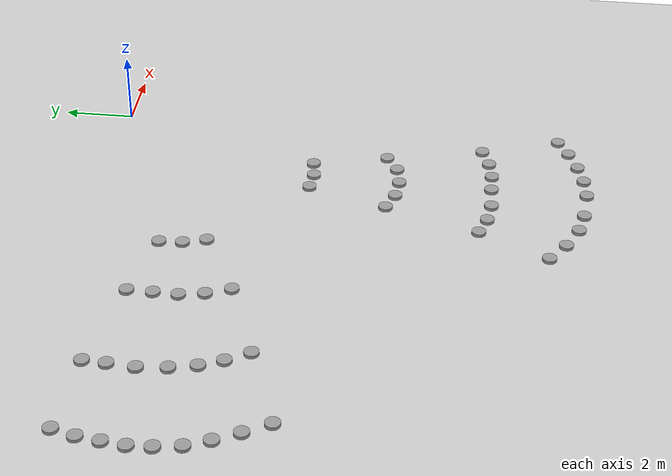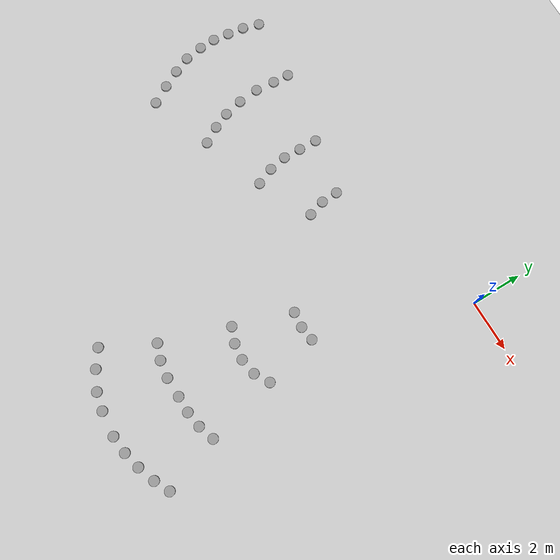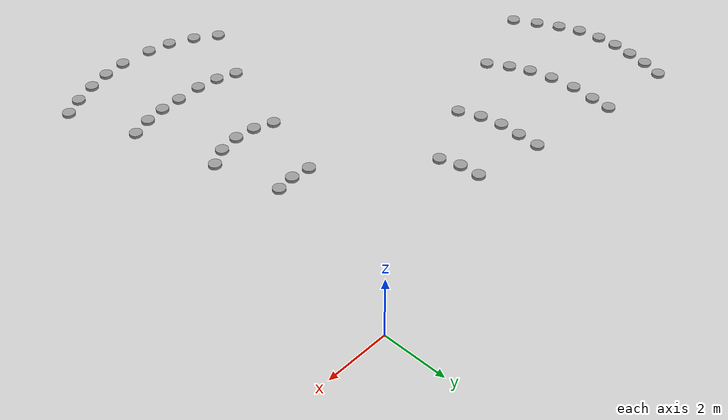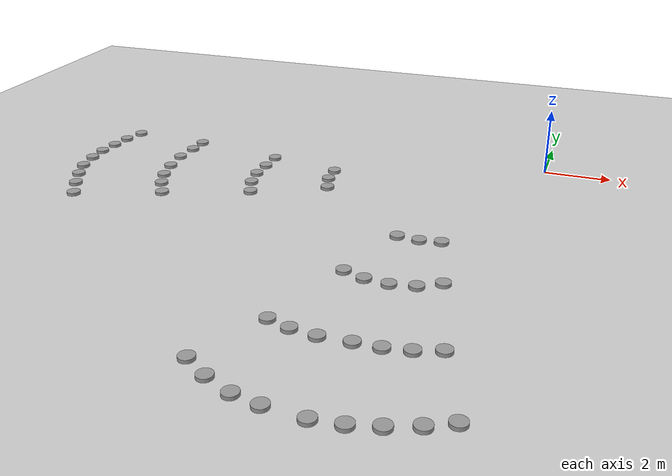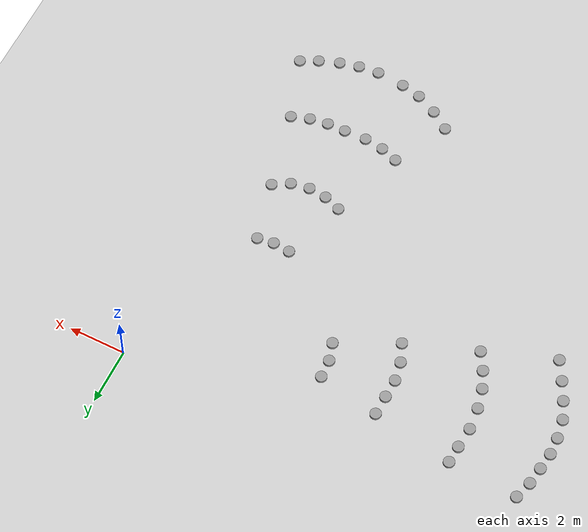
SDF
<sdf version="1.6">
 <world name="default">
  <model name="ground_plane">
   <static>1</static>
   <link name="link">
    <collision name="collision">
     <geometry><plane><normal>0 0 1</normal><size>100 100</size></plane></geometry>
     <surface><friction><ode><mu>100</mu><mu2>50</mu2></ode></friction></surface>
    </collision>
    <visual name="visual">
     <cast_shadows>0</cast_shadows>
     <geometry><plane><normal>0 0 1</normal><size>100 100</size></plane></geometry>
     <material>
      <script><uri>file://media/materials/scripts/gazebo.material</uri><name>Gazebo/Grey</name></script>
     </material>
    </visual>
   </link>
  </model>
  <model name="unit_cylinder_1_clone_clone_13_clone_56_clone_34_clone_46">
   <pose>-1.98058 -5.88205 0.048247 0 -0 0.015201</pose>
   <link name="link">
    <inertial>
     <mass>1</mass>
     <inertia><ixx>0.145833</ixx><ixy>0</ixy><ixz>0</ixz><iyy>0.145833</iyy><iyz>0</iyz><izz>0.125</izz></inertia>
    </inertial>
    <collision name="collision">
     <geometry><cylinder><radius>0.20005</radius><length>0.0965019</length></cylinder></geometry>
    </collision>
    <visual name="visual">
     <geometry><cylinder><radius>0.20005</radius><length>0.0965019</length></cylinder></geometry>
     <material>
      <script><name>Gazebo/Grey</name><uri>file://media/materials/scripts/gazebo.material</uri></script>
     </material>
    </visual>
   </link>
  </model>
  <model name="unit_cylinder_1_clone_clone_13_clone_56_clone_34_clone_47">
   <pose>-2.5721 -5.96351 0.048247 0 -0 0.015201</pose>
   <link name="link">
    <inertial>
     <mass>1</mass>
     <inertia><ixx>0.145833</ixx><ixy>0</ixy><ixz>0</ixz><iyy>0.145833</iyy><iyz>0</iyz><izz>0.125</izz></inertia>
    </inertial>
    <collision name="collision">
     <geometry><cylinder><radius>0.20005</radius><length>0.0965019</length></cylinder></geometry>
    </collision>
    <visual name="visual">
     <geometry><cylinder><radius>0.20005</radius><length>0.0965019</length></cylinder></geometry>
     <material>
      <script><name>Gazebo/Grey</name><uri>file://media/materials/scripts/gazebo.material</uri></script>
     </material>
    </visual>
   </link>
  </model>
  <model name="unit_cylinder_1_clone_clone_13_clone_56_clone_34_clone_48">
   <pose>-3.18819 -5.90583 0.048244 0 -0 0.015201</pose>
   <link name="link">
    <inertial>
     <mass>1</mass>
     <inertia><ixx>0.145833</ixx><ixy>0</ixy><ixz>0</ixz><iyy>0.145833</iyy><iyz>0</iyz><izz>0.125</izz></inertia>
    </inertial>
    <collision name="collision">
     <geometry><cylinder><radius>0.20005</radius><length>0.0965019</length></cylinder></geometry>
    </collision>
    <visual name="visual">
     <geometry><cylinder><radius>0.20005</radius><length>0.0965019</length></cylinder></geometry>
     <material>
      <script><name>Gazebo/Grey</name><uri>file://media/materials/scripts/gazebo.material</uri></script>
     </material>
    </visual>
   </link>
  </model>
  <model name="unit_cylinder_1_clone_clone_13_clone_56_clone_34_clone_49">
   <pose>-1.44226 -8 0.048247 0 -0 0.015201</pose>
   <link name="link">
    <inertial>
     <mass>1</mass>
     <inertia><ixx>0.145833</ixx><ixy>0</ixy><ixz>0</ixz><iyy>0.145833</iyy><iyz>0</iyz><izz>0.125</izz></inertia>
    </inertial>
    <collision name="collision">
     <geometry><cylinder><radius>0.20005</radius><length>0.0965019</length></cylinder></geometry>
    </collision>
    <visual name="visual">
     <geometry><cylinder><radius>0.20005</radius><length>0.0965019</length></cylinder></geometry>
     <material>
      <script><name>Gazebo/Grey</name><uri>file://media/materials/scripts/gazebo.material</uri></script>
     </material>
    </visual>
   </link>
  </model>
  <model name="unit_cylinder_1_clone_clone_13_clone_56_clone_34_clone_50">
   <pose>-2.01841 -8.33661 0.048244 0 -0 0.015201</pose>
   <link name="link">
    <inertial>
     <mass>1</mass>
     <inertia><ixx>0.145833</ixx><ixy>0</ixy><ixz>0</ixz><iyy>0.145833</iyy><iyz>0</iyz><izz>0.125</izz></inertia>
    </inertial>
    <collision name="collision">
     <geometry><cylinder><radius>0.20005</radius><length>0.0965019</length></cylinder></geometry>
    </collision>
    <visual name="visual">
     <geometry><cylinder><radius>0.20005</radius><length>0.0965019</length></cylinder></geometry>
     <material>
      <script><name>Gazebo/Grey</name><uri>file://media/materials/scripts/gazebo.material</uri></script>
     </material>
    </visual>
   </link>
  </model>
  <model name="unit_cylinder_1_clone_clone_13_clone_56_clone_34_clone_51">
   <pose>-2.68234 -8.45 0.048244 -2e-06 2e-06 0.015201</pose>
   <link name="link">
    <inertial>
     <mass>1</mass>
     <inertia><ixx>0.145833</ixx><ixy>0</ixy><ixz>0</ixz><iyy>0.145833</iyy><iyz>0</iyz><izz>0.125</izz></inertia>
    </inertial>
    <collision name="collision">
     <geometry><cylinder><radius>0.20005</radius><length>0.0965019</length></cylinder></geometry>
    </collision>
    <visual name="visual">
     <geometry><cylinder><radius>0.20005</radius><length>0.0965019</length></cylinder></geometry>
     <material>
      <script><name>Gazebo/Grey</name><uri>file://media/materials/scripts/gazebo.material</uri></script>
     </material>
    </visual>
   </link>
  </model>
  <model name="unit_cylinder_1_clone_clone_13_clone_56_clone_34_clone_52">
   <pose>-3.3365 -8.38358 0.048247 0 -0 0.015201</pose>
   <link name="link">
    <inertial>
     <mass>1</mass>
     <inertia><ixx>0.145833</ixx><ixy>0</ixy><ixz>0</ixz><iyy>0.145833</iyy><iyz>0</iyz><izz>0.125</izz></inertia>
    </inertial>
    <collision name="collision">
     <geometry><cylinder><radius>0.20005</radius><length>0.0965019</length></cylinder></geometry>
    </collision>
    <visual name="visual">
     <geometry><cylinder><radius>0.20005</radius><length>0.0965019</length></cylinder></geometry>
     <material>
      <script><name>Gazebo/Grey</name><uri>file://media/materials/scripts/gazebo.material</uri></script>
     </material>
    </visual>
   </link>
  </model>
  <model name="unit_cylinder_1_clone_clone_13_clone_56_clone_34_clone_53">
   <pose>-3.93745 -8.15759 0.048244 0 -0 0.015201</pose>
   <link name="link">
    <inertial>
     <mass>1</mass>
     <inertia><ixx>0.145833</ixx><ixy>0</ixy><ixz>0</ixz><iyy>0.145833</iyy><iyz>0</iyz><izz>0.125</izz></inertia>
    </inertial>
    <collision name="collision">
     <geometry><cylinder><radius>0.20005</radius><length>0.0965019</length></cylinder></geometry>
    </collision>
    <visual name="visual">
     <geometry><cylinder><radius>0.20005</radius><length>0.0965019</length></cylinder></geometry>
     <material>
      <script><name>Gazebo/Grey</name><uri>file://media/materials/scripts/gazebo.material</uri></script>
     </material>
    </visual>
   </link>
  </model>
  <model name="unit_cylinder_1_clone_clone_13_clone_56_clone_34_clone_57">
   <pose>-0.777241 -10.7728 0.048247 0 -0 0.015201</pose>
   <link name="link">
    <inertial>
     <mass>1</mass>
     <inertia><ixx>0.145833</ixx><ixy>0</ixy><ixz>0</ixz><iyy>0.145833</iyy><iyz>0</iyz><izz>0.125</izz></inertia>
    </inertial>
    <collision name="collision">
     <geometry><cylinder><radius>0.20005</radius><length>0.0965019</length></cylinder></geometry>
    </collision>
    <visual name="visual">
     <geometry><cylinder><radius>0.20005</radius><length>0.0965019</length></cylinder></geometry>
     <material>
      <script><name>Gazebo/Grey</name><uri>file://media/materials/scripts/gazebo.material</uri></script>
     </material>
    </visual>
   </link>
  </model>
  <model name="unit_cylinder_1_clone_clone_13_clone_56_clone_34_clone_58">
   <pose>-1.41768 -10.9895 0.048244 0 -0 0.015201</pose>
   <link name="link">
    <inertial>
     <mass>1</mass>
     <inertia><ixx>0.145833</ixx><ixy>0</ixy><ixz>0</ixz><iyy>0.145833</iyy><iyz>0</iyz><izz>0.125</izz></inertia>
    </inertial>
    <collision name="collision">
     <geometry><cylinder><radius>0.20005</radius><length>0.0965019</length></cylinder></geometry>
    </collision>
    <visual name="visual">
     <geometry><cylinder><radius>0.20005</radius><length>0.0965019</length></cylinder></geometry>
     <material>
      <script><name>Gazebo/Grey</name><uri>file://media/materials/scripts/gazebo.material</uri></script>
     </material>
    </visual>
   </link>
  </model>
  <model name="unit_cylinder_1_clone_clone_13_clone_56_clone_34_clone_59">
   <pose>-2.06887 -11.0898 0.048247 0 -0 0.015201</pose>
   <link name="link">
    <inertial>
     <mass>1</mass>
     <inertia><ixx>0.145833</ixx><ixy>0</ixy><ixz>0</ixz><iyy>0.145833</iyy><iyz>0</iyz><izz>0.125</izz></inertia>
    </inertial>
    <collision name="collision">
     <geometry><cylinder><radius>0.20005</radius><length>0.0965019</length></cylinder></geometry>
    </collision>
    <visual name="visual">
     <geometry><cylinder><radius>0.20005</radius><length>0.0965019</length></cylinder></geometry>
     <material>
      <script><name>Gazebo/Grey</name><uri>file://media/materials/scripts/gazebo.material</uri></script>
     </material>
    </visual>
   </link>
  </model>
  <model name="unit_cylinder_1_clone_clone_13_clone_56_clone_34_clone_60">
   <pose>-2.73016 -11.0968 0.048244 0 -0 0.015201</pose>
   <link name="link">
    <inertial>
     <mass>1</mass>
     <inertia><ixx>0.145833</ixx><ixy>0</ixy><ixz>0</ixz><iyy>0.145833</iyy><iyz>0</iyz><izz>0.125</izz></inertia>
    </inertial>
    <collision name="collision">
     <geometry><cylinder><radius>0.20005</radius><length>0.0965019</length></cylinder></geometry>
    </collision>
    <visual name="visual">
     <geometry><cylinder><radius>0.20005</radius><length>0.0965019</length></cylinder></geometry>
     <material>
      <script><name>Gazebo/Grey</name><uri>file://media/materials/scripts/gazebo.material</uri></script>
     </material>
    </visual>
   </link>
  </model>
  <model name="unit_cylinder_1_clone_clone_13_clone_56_clone_34_clone_56">
   <pose>-3.53004 -11.1178 0.048244 0 -0 0.015201</pose>
   <link name="link">
    <inertial>
     <mass>1</mass>
     <inertia><ixx>0.145833</ixx><ixy>0</ixy><ixz>0</ixz><iyy>0.145833</iyy><iyz>0</iyz><izz>0.125</izz></inertia>
    </inertial>
    <collision name="collision">
     <geometry><cylinder><radius>0.20005</radius><length>0.0965019</length></cylinder></geometry>
    </collision>
    <visual name="visual">
     <geometry><cylinder><radius>0.20005</radius><length>0.0965019</length></cylinder></geometry>
     <material>
      <script><name>Gazebo/Grey</name><uri>file://media/materials/scripts/gazebo.material</uri></script>
     </material>
    </visual>
   </link>
  </model>
  <model name="unit_cylinder_1_clone_clone_13_clone_56_clone_34_clone_55">
   <pose>-4.21998 -11.0232 0.048247 0 -0 0.015201</pose>
   <link name="link">
    <inertial>
     <mass>1</mass>
     <inertia><ixx>0.145833</ixx><ixy>0</ixy><ixz>0</ixz><iyy>0.145833</iyy><iyz>0</iyz><izz>0.125</izz></inertia>
    </inertial>
    <collision name="collision">
     <geometry><cylinder><radius>0.20005</radius><length>0.0965019</length></cylinder></geometry>
    </collision>
    <visual name="visual">
     <geometry><cylinder><radius>0.20005</radius><length>0.0965019</length></cylinder></geometry>
     <material>
      <script><name>Gazebo/Grey</name><uri>file://media/materials/scripts/gazebo.material</uri></script>
     </material>
    </visual>
   </link>
  </model>
  <model name="unit_cylinder_1_clone_clone_13_clone_56_clone_34_clone_54">
   <pose>-4.83362 -10.8094 0.048244 0 -0 0.015201</pose>
   <link name="link">
    <inertial>
     <mass>1</mass>
     <inertia><ixx>0.145833</ixx><ixy>0</ixy><ixz>0</ixz><iyy>0.145833</iyy><iyz>0</iyz><izz>0.125</izz></inertia>
    </inertial>
    <collision name="collision">
     <geometry><cylinder><radius>0.20005</radius><length>0.0965019</length></cylinder></geometry>
    </collision>
    <visual name="visual">
     <geometry><cylinder><radius>0.20005</radius><length>0.0965019</length></cylinder></geometry>
     <material>
      <script><name>Gazebo/Grey</name><uri>file://media/materials/scripts/gazebo.material</uri></script>
     </material>
    </visual>
   </link>
  </model>
  <model name="unit_cylinder_1_clone_clone_13_clone_56_clone_34_clone_61">
   <pose>-1e-06 -13 0.048247 0 -0 0.015201</pose>
   <link name="link">
    <inertial>
     <mass>1</mass>
     <inertia><ixx>0.145833</ixx><ixy>0</ixy><ixz>0</ixz><iyy>0.145833</iyy><iyz>0</iyz><izz>0.125</izz></inertia>
    </inertial>
    <collision name="collision">
     <geometry><cylinder><radius>0.20005</radius><length>0.0965019</length></cylinder></geometry>
    </collision>
    <visual name="visual">
     <geometry><cylinder><radius>0.20005</radius><length>0.0965019</length></cylinder></geometry>
     <material>
      <script><name>Gazebo/Grey</name><uri>file://media/materials/scripts/gazebo.material</uri></script>
     </material>
    </visual>
   </link>
  </model>
  <model name="unit_cylinder_1_clone_clone_13_clone_56_clone_34_clone_62">
   <pose>-0.600849 -13.3026 0.048244 0 -0 0.015201</pose>
   <link name="link">
    <inertial>
     <mass>1</mass>
     <inertia><ixx>0.145833</ixx><ixy>0</ixy><ixz>0</ixz><iyy>0.145833</iyy><iyz>0</iyz><izz>0.125</izz></inertia>
    </inertial>
    <collision name="collision">
     <geometry><cylinder><radius>0.20005</radius><length>0.0965019</length></cylinder></geometry>
    </collision>
    <visual name="visual">
     <geometry><cylinder><radius>0.20005</radius><length>0.0965019</length></cylinder></geometry>
     <material>
      <script><name>Gazebo/Grey</name><uri>file://media/materials/scripts/gazebo.material</uri></script>
     </material>
    </visual>
   </link>
  </model>
  <model name="unit_cylinder_1_clone_clone_13_clone_56_clone_34_clone_63">
   <pose>-1.30563 -13.5584 0.048247 0 -0 0.015201</pose>
   <link name="link">
    <inertial>
     <mass>1</mass>
     <inertia><ixx>0.145833</ixx><ixy>0</ixy><ixz>0</ixz><iyy>0.145833</iyy><iyz>0</iyz><izz>0.125</izz></inertia>
    </inertial>
    <collision name="collision">
     <geometry><cylinder><radius>0.20005</radius><length>0.0965019</length></cylinder></geometry>
    </collision>
    <visual name="visual">
     <geometry><cylinder><radius>0.20005</radius><length>0.0965019</length></cylinder></geometry>
     <material>
      <script><name>Gazebo/Grey</name><uri>file://media/materials/scripts/gazebo.material</uri></script>
     </material>
    </visual>
   </link>
  </model>
  <model name="unit_cylinder_1_clone_clone_13_clone_56_clone_34_clone_64">
   <pose>-1.99428 -13.728 0.048244 0 -0 0.015201</pose>
   <link name="link">
    <inertial>
     <mass>1</mass>
     <inertia><ixx>0.145833</ixx><ixy>0</ixy><ixz>0</ixz><iyy>0.145833</iyy><iyz>0</iyz><izz>0.125</izz></inertia>
    </inertial>
    <collision name="collision">
     <geometry><cylinder><radius>0.20005</radius><length>0.0965019</length></cylinder></geometry>
    </collision>
    <visual name="visual">
     <geometry><cylinder><radius>0.20005</radius><length>0.0965019</length></cylinder></geometry>
     <material>
      <script><name>Gazebo/Grey</name><uri>file://media/materials/scripts/gazebo.material</uri></script>
     </material>
    </visual>
   </link>
  </model>
  <model name="unit_cylinder_1_clone_clone_13_clone_56_clone_34_clone_65">
   <pose>-2.71571 -13.8 0.048244 0 -0 0.015201</pose>
   <link name="link">
    <inertial>
     <mass>1</mass>
     <inertia><ixx>0.145833</ixx><ixy>0</ixy><ixz>0</ixz><iyy>0.145833</iyy><iyz>0</iyz><izz>0.125</izz></inertia>
    </inertial>
    <collision name="collision">
     <geometry><cylinder><radius>0.20005</radius><length>0.0965019</length></cylinder></geometry>
    </collision>
    <visual name="visual">
     <geometry><cylinder><radius>0.20005</radius><length>0.0965019</length></cylinder></geometry>
     <material>
      <script><name>Gazebo/Grey</name><uri>file://media/materials/scripts/gazebo.material</uri></script>
     </material>
    </visual>
   </link>
  </model>
  <model name="unit_cylinder_1_clone_clone_13_clone_56_clone_34_clone_66">
   <pose>-3.71695 -13.7132 0.048244 0 -0 0.015201</pose>
   <link name="link">
    <inertial>
     <mass>1</mass>
     <inertia><ixx>0.145833</ixx><ixy>0</ixy><ixz>0</ixz><iyy>0.145833</iyy><iyz>0</iyz><izz>0.125</izz></inertia>
    </inertial>
    <collision name="collision">
     <geometry><cylinder><radius>0.20005</radius><length>0.0965019</length></cylinder></geometry>
    </collision>
    <visual name="visual">
     <geometry><cylinder><radius>0.20005</radius><length>0.0965019</length></cylinder></geometry>
     <material>
      <script><name>Gazebo/Grey</name><uri>file://media/materials/scripts/gazebo.material</uri></script>
     </material>
    </visual>
   </link>
  </model>
  <model name="unit_cylinder_1_clone_clone_13_clone_56_clone_34_clone_67">
   <pose>-4.4277 -13.5571 0.048247 0 -0 0.015201</pose>
   <link name="link">
    <inertial>
     <mass>1</mass>
     <inertia><ixx>0.145833</ixx><ixy>0</ixy><ixz>0</ixz><iyy>0.145833</iyy><iyz>0</iyz><izz>0.125</izz></inertia>
    </inertial>
    <collision name="collision">
     <geometry><cylinder><radius>0.20005</radius><length>0.0965019</length></cylinder></geometry>
    </collision>
    <visual name="visual">
     <geometry><cylinder><radius>0.20005</radius><length>0.0965019</length></cylinder></geometry>
     <material>
      <script><name>Gazebo/Grey</name><uri>file://media/materials/scripts/gazebo.material</uri></script>
     </material>
    </visual>
   </link>
  </model>
  <model name="unit_cylinder_1_clone_clone_13_clone_56_clone_34_clone_68">
   <pose>-5.17165 -13.2023 0.048244 0 -0 0.015201</pose>
   <link name="link">
    <inertial>
     <mass>1</mass>
     <inertia><ixx>0.145833</ixx><ixy>0</ixy><ixz>0</ixz><iyy>0.145833</iyy><iyz>0</iyz><izz>0.125</izz></inertia>
    </inertial>
    <collision name="collision">
     <geometry><cylinder><radius>0.20005</radius><length>0.0965019</length></cylinder></geometry>
    </collision>
    <visual name="visual">
     <geometry><cylinder><radius>0.20005</radius><length>0.0965019</length></cylinder></geometry>
     <material>
      <script><name>Gazebo/Grey</name><uri>file://media/materials/scripts/gazebo.material</uri></script>
     </material>
    </visual>
   </link>
  </model>
  <model name="unit_cylinder_1_clone_clone_13_clone_56_clone_34_clone_69">
   <pose>-5.82735 -12.747 0.048247 0 -0 0.015201</pose>
   <link name="link">
    <inertial>
     <mass>1</mass>
     <inertia><ixx>0.145833</ixx><ixy>0</ixy><ixz>0</ixz><iyy>0.145833</iyy><iyz>0</iyz><izz>0.125</izz></inertia>
    </inertial>
    <collision name="collision">
     <geometry><cylinder><radius>0.20005</radius><length>0.0965019</length></cylinder></geometry>
    </collision>
    <visual name="visual">
     <geometry><cylinder><radius>0.20005</radius><length>0.0965019</length></cylinder></geometry>
     <material>
      <script><name>Gazebo/Grey</name><uri>file://media/materials/scripts/gazebo.material</uri></script>
     </material>
    </visual>
   </link>
  </model>
  <model name="unit_cylinder_1_clone_clone_13_clone_56_clone_34_clone_70">
   <pose>-6.07609 -3.43212 0.048244 0 -0 0.015201</pose>
   <link name="link">
    <inertial>
     <mass>1</mass>
     <inertia><ixx>0.145833</ixx><ixy>0</ixy><ixz>0</ixz><iyy>0.145833</iyy><iyz>0</iyz><izz>0.125</izz></inertia>
    </inertial>
    <collision name="collision">
     <geometry><cylinder><radius>0.20005</radius><length>0.0965019</length></cylinder></geometry>
    </collision>
    <visual name="visual">
     <geometry><cylinder><radius>0.20005</radius><length>0.0965019</length></cylinder></geometry>
     <material>
      <script><name>Gazebo/Grey</name><uri>file://media/materials/scripts/gazebo.material</uri></script>
     </material>
    </visual>
   </link>
  </model>
  <model name="unit_cylinder_1_clone_clone_13_clone_56_clone_34_clone_71">
   <pose>-6.27153 -2.79533 0.048243 -1e-06 1e-06 0.015201</pose>
   <link name="link">
    <inertial>
     <mass>1</mass>
     <inertia><ixx>0.145833</ixx><ixy>0</ixy><ixz>0</ixz><iyy>0.145833</iyy><iyz>0</iyz><izz>0.125</izz></inertia>
    </inertial>
    <collision name="collision">
     <geometry><cylinder><radius>0.20005</radius><length>0.0965019</length></cylinder></geometry>
    </collision>
    <visual name="visual">
     <geometry><cylinder><radius>0.20005</radius><length>0.0965019</length></cylinder></geometry>
     <material>
      <script><name>Gazebo/Grey</name><uri>file://media/materials/scripts/gazebo.material</uri></script>
     </material>
    </visual>
   </link>
  </model>
  <model name="unit_cylinder_1_clone_clone_13_clone_56_clone_34_clone_72">
   <pose>-6.3051 -2.14443 0.048243 -1e-06 1e-06 0.015201</pose>
   <link name="link">
    <inertial>
     <mass>1</mass>
     <inertia><ixx>0.145833</ixx><ixy>0</ixy><ixz>0</ixz><iyy>0.145833</iyy><iyz>0</iyz><izz>0.125</izz></inertia>
    </inertial>
    <collision name="collision">
     <geometry><cylinder><radius>0.20005</radius><length>0.0965019</length></cylinder></geometry>
    </collision>
    <visual name="visual">
     <geometry><cylinder><radius>0.20005</radius><length>0.0965019</length></cylinder></geometry>
     <material>
      <script><name>Gazebo/Grey</name><uri>file://media/materials/scripts/gazebo.material</uri></script>
     </material>
    </visual>
   </link>
  </model>
  <model name="unit_cylinder_1_clone_clone_13_clone_56_clone_34_clone_73">
   <pose>-8.15008 -4.4689 0.048249 0 -0 0.015201</pose>
   <link name="link">
    <inertial>
     <mass>1</mass>
     <inertia><ixx>0.145833</ixx><ixy>0</ixy><ixz>0</ixz><iyy>0.145833</iyy><iyz>0</iyz><izz>0.125</izz></inertia>
    </inertial>
    <collision name="collision">
     <geometry><cylinder><radius>0.20005</radius><length>0.0965019</length></cylinder></geometry>
    </collision>
    <visual name="visual">
     <geometry><cylinder><radius>0.20005</radius><length>0.0965019</length></cylinder></geometry>
     <material>
      <script><name>Gazebo/Grey</name><uri>file://media/materials/scripts/gazebo.material</uri></script>
     </material>
    </visual>
   </link>
  </model>
  <model name="unit_cylinder_1_clone_clone_13_clone_56_clone_34_clone_74">
   <pose>-8.4199 -3.80496 0.048249 0 -0 0.015201</pose>
   <link name="link">
    <inertial>
     <mass>1</mass>
     <inertia><ixx>0.145833</ixx><ixy>0</ixy><ixz>0</ixz><iyy>0.145833</iyy><iyz>0</iyz><izz>0.125</izz></inertia>
    </inertial>
    <collision name="collision">
     <geometry><cylinder><radius>0.20005</radius><length>0.0965019</length></cylinder></geometry>
    </collision>
    <visual name="visual">
     <geometry><cylinder><radius>0.20005</radius><length>0.0965019</length></cylinder></geometry>
     <material>
      <script><name>Gazebo/Grey</name><uri>file://media/materials/scripts/gazebo.material</uri></script>
     </material>
    </visual>
   </link>
  </model>
  <model name="unit_cylinder_1_clone_clone_13_clone_56_clone_34_clone_75">
   <pose>-8.54794 -3.1181 0.048249 0 -0 0.015201</pose>
   <link name="link">
    <inertial>
     <mass>1</mass>
     <inertia><ixx>0.145833</ixx><ixy>0</ixy><ixz>0</ixz><iyy>0.145833</iyy><iyz>0</iyz><izz>0.125</izz></inertia>
    </inertial>
    <collision name="collision">
     <geometry><cylinder><radius>0.20005</radius><length>0.0965019</length></cylinder></geometry>
    </collision>
    <visual name="visual">
     <geometry><cylinder><radius>0.20005</radius><length>0.0965019</length></cylinder></geometry>
     <material>
      <script><name>Gazebo/Grey</name><uri>file://media/materials/scripts/gazebo.material</uri></script>
     </material>
    </visual>
   </link>
  </model>
  <model name="unit_cylinder_1_clone_clone_13_clone_56_clone_34_clone_76">
   <pose>-8.52865 -2.43813 0.048243 -1e-06 1e-06 0.015201</pose>
   <link name="link">
    <inertial>
     <mass>1</mass>
     <inertia><ixx>0.145833</ixx><ixy>0</ixy><ixz>0</ixz><iyy>0.145833</iyy><iyz>0</iyz><izz>0.125</izz></inertia>
    </inertial>
    <collision name="collision">
     <geometry><cylinder><radius>0.20005</radius><length>0.0965019</length></cylinder></geometry>
    </collision>
    <visual name="visual">
     <geometry><cylinder><radius>0.20005</radius><length>0.0965019</length></cylinder></geometry>
     <material>
      <script><name>Gazebo/Grey</name><uri>file://media/materials/scripts/gazebo.material</uri></script>
     </material>
    </visual>
   </link>
  </model>
  <model name="unit_cylinder_1_clone_clone_13_clone_56_clone_34_clone_77">
   <pose>-8.51187 -1.73321 0.048249 0 -0 0.015201</pose>
   <link name="link">
    <inertial>
     <mass>1</mass>
     <inertia><ixx>0.145833</ixx><ixy>0</ixy><ixz>0</ixz><iyy>0.145833</iyy><iyz>0</iyz><izz>0.125</izz></inertia>
    </inertial>
    <collision name="collision">
     <geometry><cylinder><radius>0.20005</radius><length>0.0965019</length></cylinder></geometry>
    </collision>
    <visual name="visual">
     <geometry><cylinder><radius>0.20005</radius><length>0.0965019</length></cylinder></geometry>
     <material>
      <script><name>Gazebo/Grey</name><uri>file://media/materials/scripts/gazebo.material</uri></script>
     </material>
    </visual>
   </link>
  </model>
  <model name="unit_cylinder_1_clone_clone_13_clone_56_clone_34_clone_78">
   <pose>-10.6274 -5.37334 0.048249 0 -0 0.015201</pose>
   <link name="link">
    <inertial>
     <mass>1</mass>
     <inertia><ixx>0.145833</ixx><ixy>0</ixy><ixz>0</ixz><iyy>0.145833</iyy><iyz>0</iyz><izz>0.125</izz></inertia>
    </inertial>
    <collision name="collision">
     <geometry><cylinder><radius>0.20005</radius><length>0.0965019</length></cylinder></geometry>
    </collision>
    <visual name="visual">
     <geometry><cylinder><radius>0.20005</radius><length>0.0965019</length></cylinder></geometry>
     <material>
      <script><name>Gazebo/Grey</name><uri>file://media/materials/scripts/gazebo.material</uri></script>
     </material>
    </visual>
   </link>
  </model>
  <model name="unit_cylinder_1_clone_clone_13_clone_56_clone_34_clone_79">
   <pose>-10.9979 -4.75441 0.048245 0 -0 0.015201</pose>
   <link name="link">
    <inertial>
     <mass>1</mass>
     <inertia><ixx>0.145833</ixx><ixy>0</ixy><ixz>0</ixz><iyy>0.145833</iyy><iyz>0</iyz><izz>0.125</izz></inertia>
    </inertial>
    <collision name="collision">
     <geometry><cylinder><radius>0.20005</radius><length>0.0965019</length></cylinder></geometry>
    </collision>
    <visual name="visual">
     <geometry><cylinder><radius>0.20005</radius><length>0.0965019</length></cylinder></geometry>
     <material>
      <script><name>Gazebo/Grey</name><uri>file://media/materials/scripts/gazebo.material</uri></script>
     </material>
    </visual>
   </link>
  </model>
  <model name="unit_cylinder_1_clone_clone_13_clone_56_clone_34_clone_80">
   <pose>-11.2618 -4.13814 0.048245 0 -0 0.015201</pose>
   <link name="link">
    <inertial>
     <mass>1</mass>
     <inertia><ixx>0.145833</ixx><ixy>0</ixy><ixz>0</ixz><iyy>0.145833</iyy><iyz>0</iyz><izz>0.125</izz></inertia>
    </inertial>
    <collision name="collision">
     <geometry><cylinder><radius>0.20005</radius><length>0.0965019</length></cylinder></geometry>
    </collision>
    <visual name="visual">
     <geometry><cylinder><radius>0.20005</radius><length>0.0965019</length></cylinder></geometry>
     <material>
      <script><name>Gazebo/Grey</name><uri>file://media/materials/scripts/gazebo.material</uri></script>
     </material>
    </visual>
   </link>
  </model>
  <model name="unit_cylinder_1_clone_clone_13_clone_56_clone_34_clone_81">
   <pose>-11.4298 -3.42109 0.048245 0 -0 0.015201</pose>
   <link name="link">
    <inertial>
     <mass>1</mass>
     <inertia><ixx>0.145833</ixx><ixy>0</ixy><ixz>0</ixz><iyy>0.145833</iyy><iyz>0</iyz><izz>0.125</izz></inertia>
    </inertial>
    <collision name="collision">
     <geometry><cylinder><radius>0.20005</radius><length>0.0965019</length></cylinder></geometry>
    </collision>
    <visual name="visual">
     <geometry><cylinder><radius>0.20005</radius><length>0.0965019</length></cylinder></geometry>
     <material>
      <script><name>Gazebo/Grey</name><uri>file://media/materials/scripts/gazebo.material</uri></script>
     </material>
    </visual>
   </link>
  </model>
  <model name="unit_cylinder_1_clone_clone_13_clone_56_clone_34_clone_82">
   <pose>-11.511 -2.62547 0.048249 1e-06 -1e-06 0.015201</pose>
   <link name="link">
    <inertial>
     <mass>1</mass>
     <inertia><ixx>0.145833</ixx><ixy>0</ixy><ixz>0</ixz><iyy>0.145833</iyy><iyz>0</iyz><izz>0.125</izz></inertia>
    </inertial>
    <collision name="collision">
     <geometry><cylinder><radius>0.20005</radius><length>0.0965019</length></cylinder></geometry>
    </collision>
    <visual name="visual">
     <geometry><cylinder><radius>0.20005</radius><length>0.0965019</length></cylinder></geometry>
     <material>
      <script><name>Gazebo/Grey</name><uri>file://media/materials/scripts/gazebo.material</uri></script>
     </material>
    </visual>
   </link>
  </model>
  <model name="unit_cylinder_1_clone_clone_13_clone_56_clone_34_clone_83">
   <pose>-11.4494 -1.87381 0.048249 1e-06 -1e-06 0.015201</pose>
   <link name="link">
    <inertial>
     <mass>1</mass>
     <inertia><ixx>0.145833</ixx><ixy>0</ixy><ixz>0</ixz><iyy>0.145833</iyy><iyz>0</iyz><izz>0.125</izz></inertia>
    </inertial>
    <collision name="collision">
     <geometry><cylinder><radius>0.20005</radius><length>0.0965019</length></cylinder></geometry>
    </collision>
    <visual name="visual">
     <geometry><cylinder><radius>0.20005</radius><length>0.0965019</length></cylinder></geometry>
     <material>
      <script><name>Gazebo/Grey</name><uri>file://media/materials/scripts/gazebo.material</uri></script>
     </material>
    </visual>
   </link>
  </model>
  <model name="unit_cylinder_1_clone_clone_13_clone_56_clone_34_clone_84">
   <pose>-11.4129 -1.24515 0.048243 -1e-06 1e-06 0.015201</pose>
   <link name="link">
    <inertial>
     <mass>1</mass>
     <inertia><ixx>0.145833</ixx><ixy>0</ixy><ixz>0</ixz><iyy>0.145833</iyy><iyz>0</iyz><izz>0.125</izz></inertia>
    </inertial>
    <collision name="collision">
     <geometry><cylinder><radius>0.20005</radius><length>0.0965019</length></cylinder></geometry>
    </collision>
    <visual name="visual">
     <geometry><cylinder><radius>0.20005</radius><length>0.0965019</length></cylinder></geometry>
     <material>
      <script><name>Gazebo/Grey</name><uri>file://media/materials/scripts/gazebo.material</uri></script>
     </material>
    </visual>
   </link>
  </model>
  <model name="unit_cylinder_1_clone_clone_13_clone_56_clone_34_clone_85">
   <pose>-13.1041 -6.26179 0.048244 0 -0 0.015201</pose>
   <link name="link">
    <inertial>
     <mass>1</mass>
     <inertia><ixx>0.145833</ixx><ixy>0</ixy><ixz>0</ixz><iyy>0.145833</iyy><iyz>0</iyz><izz>0.125</izz></inertia>
    </inertial>
    <collision name="collision">
     <geometry><cylinder><radius>0.20005</radius><length>0.0965019</length></cylinder></geometry>
    </collision>
    <visual name="visual">
     <geometry><cylinder><radius>0.20005</radius><length>0.0965019</length></cylinder></geometry>
     <material>
      <script><name>Gazebo/Grey</name><uri>file://media/materials/scripts/gazebo.material</uri></script>
     </material>
    </visual>
   </link>
  </model>
  <model name="unit_cylinder_1_clone_clone_13_clone_56_clone_34_clone_86">
   <pose>-13.4985 -5.58563 0.048243 -1e-06 1e-06 0.015201</pose>
   <link name="link">
    <inertial>
     <mass>1</mass>
     <inertia><ixx>0.145833</ixx><ixy>0</ixy><ixz>0</ixz><iyy>0.145833</iyy><iyz>0</iyz><izz>0.125</izz></inertia>
    </inertial>
    <collision name="collision">
     <geometry><cylinder><radius>0.20005</radius><length>0.0965019</length></cylinder></geometry>
    </collision>
    <visual name="visual">
     <geometry><cylinder><radius>0.20005</radius><length>0.0965019</length></cylinder></geometry>
     <material>
      <script><name>Gazebo/Grey</name><uri>file://media/materials/scripts/gazebo.material</uri></script>
     </material>
    </visual>
   </link>
  </model>
  <model name="unit_cylinder_1_clone_clone_13_clone_56_clone_34_clone_87">
   <pose>-13.8361 -4.93421 0.048242 -2e-06 2e-06 0.015201</pose>
   <link name="link">
    <inertial>
     <mass>1</mass>
     <inertia><ixx>0.145833</ixx><ixy>0</ixy><ixz>0</ixz><iyy>0.145833</iyy><iyz>0</iyz><izz>0.125</izz></inertia>
    </inertial>
    <collision name="collision">
     <geometry><cylinder><radius>0.20005</radius><length>0.0965019</length></cylinder></geometry>
    </collision>
    <visual name="visual">
     <geometry><cylinder><radius>0.20005</radius><length>0.0965019</length></cylinder></geometry>
     <material>
      <script><name>Gazebo/Grey</name><uri>file://media/materials/scripts/gazebo.material</uri></script>
     </material>
    </visual>
   </link>
  </model>
  <model name="unit_cylinder_1_clone_clone_13_clone_56_clone_34_clone_88">
   <pose>-14.0984 -4.30192 0.048242 -2e-06 2e-06 0.015201</pose>
   <link name="link">
    <inertial>
     <mass>1</mass>
     <inertia><ixx>0.145833</ixx><ixy>0</ixy><ixz>0</ixz><iyy>0.145833</iyy><iyz>0</iyz><izz>0.125</izz></inertia>
    </inertial>
    <collision name="collision">
     <geometry><cylinder><radius>0.20005</radius><length>0.0965019</length></cylinder></geometry>
    </collision>
    <visual name="visual">
     <geometry><cylinder><radius>0.20005</radius><length>0.0965019</length></cylinder></geometry>
     <material>
      <script><name>Gazebo/Grey</name><uri>file://media/materials/scripts/gazebo.material</uri></script>
     </material>
    </visual>
   </link>
  </model>
  <model name="unit_cylinder_1_clone_clone_13_clone_56_clone_34_clone_89">
   <pose>-14.2147 -3.61177 0.048243 -1e-06 1e-06 0.015201</pose>
   <link name="link">
    <inertial>
     <mass>1</mass>
     <inertia><ixx>0.145833</ixx><ixy>0</ixy><ixz>0</ixz><iyy>0.145833</iyy><iyz>0</iyz><izz>0.125</izz></inertia>
    </inertial>
    <collision name="collision">
     <geometry><cylinder><radius>0.20005</radius><length>0.0965019</length></cylinder></geometry>
    </collision>
    <visual name="visual">
     <geometry><cylinder><radius>0.20005</radius><length>0.0965019</length></cylinder></geometry>
     <material>
      <script><name>Gazebo/Grey</name><uri>file://media/materials/scripts/gazebo.material</uri></script>
     </material>
    </visual>
   </link>
  </model>
  <model name="unit_cylinder_1_clone_clone_13_clone_56_clone_34_clone_90">
   <pose>-14.2418 -2.98974 0.048243 -1e-06 1e-06 0.015201</pose>
   <link name="link">
    <inertial>
     <mass>1</mass>
     <inertia><ixx>0.145833</ixx><ixy>0</ixy><ixz>0</ixz><iyy>0.145833</iyy><iyz>0</iyz><izz>0.125</izz></inertia>
    </inertial>
    <collision name="collision">
     <geometry><cylinder><radius>0.20005</radius><length>0.0965019</length></cylinder></geometry>
    </collision>
    <visual name="visual">
     <geometry><cylinder><radius>0.20005</radius><length>0.0965019</length></cylinder></geometry>
     <material>
      <script><name>Gazebo/Grey</name><uri>file://media/materials/scripts/gazebo.material</uri></script>
     </material>
    </visual>
   </link>
  </model>
  <model name="unit_cylinder_1_clone_clone_13_clone_56_clone_34_clone_91">
   <pose>-14.1662 -2.36754 0.048243 -1e-06 1e-06 0.015201</pose>
   <link name="link">
    <inertial>
     <mass>1</mass>
     <inertia><ixx>0.145833</ixx><ixy>0</ixy><ixz>0</ixz><iyy>0.145833</iyy><iyz>0</iyz><izz>0.125</izz></inertia>
    </inertial>
    <collision name="collision">
     <geometry><cylinder><radius>0.20005</radius><length>0.0965019</length></cylinder></geometry>
    </collision>
    <visual name="visual">
     <geometry><cylinder><radius>0.20005</radius><length>0.0965019</length></cylinder></geometry>
     <material>
      <script><name>Gazebo/Grey</name><uri>file://media/materials/scripts/gazebo.material</uri></script>
     </material>
    </visual>
   </link>
  </model>
  <model name="unit_cylinder_1_clone_clone_13_clone_56_clone_34_clone_92">
   <pose>-14.0756 -1.74021 0.048246 0 1e-06 0.015201</pose>
   <link name="link">
    <inertial>
     <mass>1</mass>
     <inertia><ixx>0.145833</ixx><ixy>0</ixy><ixz>0</ixz><iyy>0.145833</iyy><iyz>0</iyz><izz>0.125</izz></inertia>
    </inertial>
    <collision name="collision">
     <geometry><cylinder><radius>0.20005</radius><length>0.0965019</length></cylinder></geometry>
    </collision>
    <visual name="visual">
     <geometry><cylinder><radius>0.20005</radius><length>0.0965019</length></cylinder></geometry>
     <material>
      <script><name>Gazebo/Grey</name><uri>file://media/materials/scripts/gazebo.material</uri></script>
     </material>
    </visual>
   </link>
  </model>
  <model name="unit_cylinder_1_clone_clone_13_clone_56_clone_34_clone_93">
   <pose>-13.8901 -1.10801 0.048243 -1e-06 1e-06 0.015201</pose>
   <link name="link">
    <inertial>
     <mass>1</mass>
     <inertia><ixx>0.145833</ixx><ixy>0</ixy><ixz>0</ixz><iyy>0.145833</iyy><iyz>0</iyz><izz>0.125</izz></inertia>
    </inertial>
    <collision name="collision">
     <geometry><cylinder><radius>0.20005</radius><length>0.0965019</length></cylinder></geometry>
    </collision>
    <visual name="visual">
     <geometry><cylinder><radius>0.20005</radius><length>0.0965019</length></cylinder></geometry>
     <material>
      <script><name>Gazebo/Grey</name><uri>file://media/materials/scripts/gazebo.material</uri></script>
     </material>
    </visual>
   </link>
  </model>
 </world>
</sdf>
